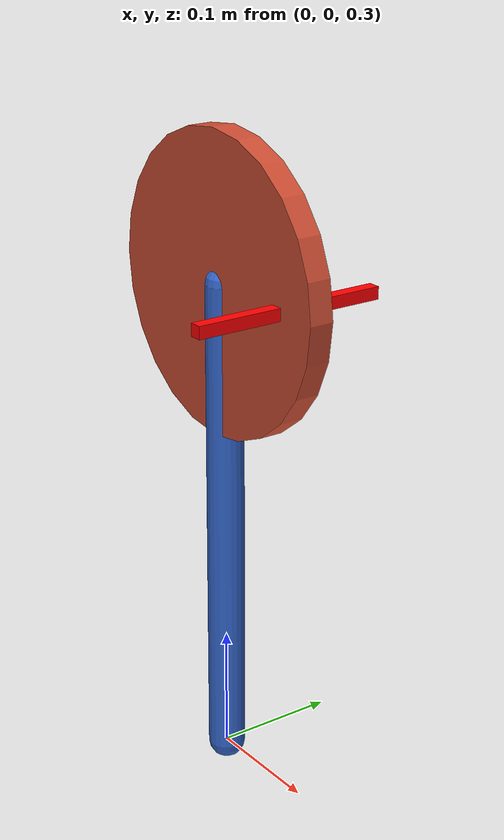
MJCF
<mujoco model="reaction_wheel_pendulum">

  <option gravity="0 0 -9.8" integrator="RK4" timestep="0.001"/>

  <visual>
    <headlight ambient="0.4 0.4 0.4" diffuse="0.8 0.8 0.8"/>
  </visual>

  <worldbody>
    <body name="base" pos="0 0 0.3">
  <body name="pendulum" pos="0 0 0">
    <joint name="q1" type="hinge" axis="0 1 0" pos="0 0 0" limited="false" damping="0.0"/>
    <geom name="rod" type="capsule"
          fromto="0 0 0  0 0 0.4"
          size="0.015" rgba="0.2 0.4 0.8 1" mass="0.3"/>

    <body name="disk" pos="0 0 0.4">
      <joint name="q2" type="hinge" axis="0 1 0" pos="0 0 0" limited="false" damping="0.0"/>
      <geom name="disk_geom" type="cylinder"
            pos="0 0 0" euler="90 0 0"
            size="0.12 0.01" rgba="0.8 0.3 0.2 1" mass="0.3"/>

      <geom name="wheel_tag" type="box" size="0.005 0.08 0.005"
        pos="0.08 0 0" rgba="1 0 0 1"
        contype="0" conaffinity="0" mass="0"/>

    </body>
  </body>
</body>
  </worldbody>

  <actuator>
    <!-- Solo il disco è attuato -->
    <motor name="motor2" joint="q2"
           gear="1" ctrllimited="true" ctrlrange="-3 3"/>
  </actuator>

  <sensor>
    <jointpos name="q1_pos" joint="q1"/>
    <jointpos name="q2_pos" joint="q2"/>
    <jointvel name="dq1" joint="q1"/>
    <jointvel name="dq2" joint="q2"/>
  </sensor>

</mujoco>
